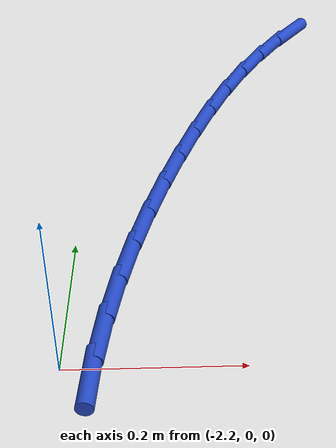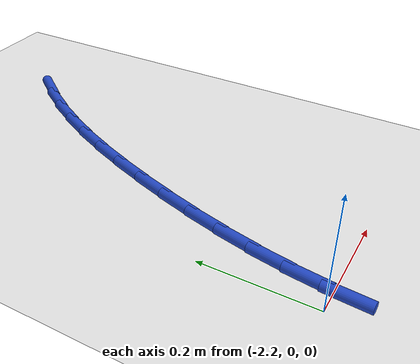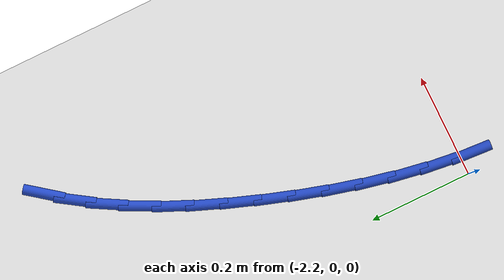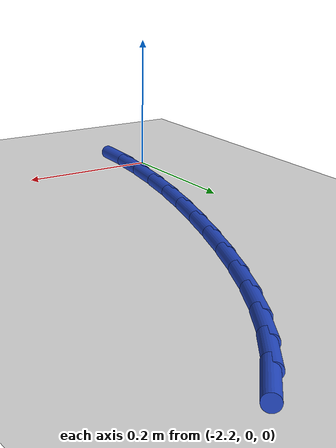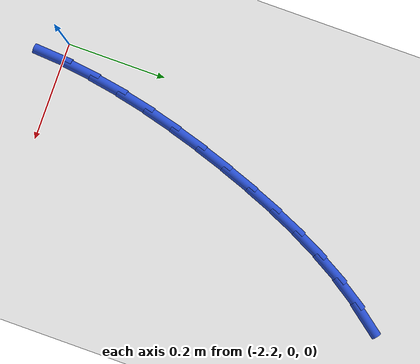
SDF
<sdf version="1.6">
 <world name="default">
  <model name="ground_plane">
   <static>1</static>
   <link name="link">
    <collision name="collision">
     <geometry><plane><normal>0 0 1</normal><size>100 100</size></plane></geometry>
     <surface><friction><ode><mu>100</mu><mu2>50</mu2></ode></friction></surface>
    </collision>
    <visual name="visual">
     <cast_shadows>0</cast_shadows>
     <geometry><plane><normal>0 0 1</normal><size>100 100</size></plane></geometry>
     <material>
      <script><uri>file://media/materials/scripts/gazebo.material</uri><name>Gazebo/WhiteGlow</name></script>
     </material>
    </visual>
   </link>
  </model>
  <model name="line">
   <link name="link_42">
    <pose>-1.8848785332239637 0.7314589720108445 0.01 0 1.57 0.9150941079206814</pose>
    <collision name="collision">
     <geometry><cylinder><radius>0.01</radius><length>0.08</length></cylinder></geometry>
    </collision>
    <visual name="visual">
     <material>
      <script><name>Gazebo/Blue</name><uri>file://media/materials/scripts/gazebo.material</uri></script>
     </material>
     <geometry><cylinder><radius>0.01</radius><length>0.08</length></cylinder></geometry>
    </visual>
   </link>
   <link name="link_43">
    <pose>-1.9211521339381583 0.6843039343595119 0.01 0 1.57 0.9918430631376198</pose>
    <collision name="collision">
     <geometry><cylinder><radius>0.01</radius><length>0.08</length></cylinder></geometry>
    </collision>
    <visual name="visual">
     <material>
      <script><name>Gazebo/Blue</name><uri>file://media/materials/scripts/gazebo.material</uri></script>
     </material>
     <geometry><cylinder><radius>0.01</radius><length>0.08</length></cylinder></geometry>
    </visual>
   </link>
   <link name="link_44">
    <pose>-1.9541948117317194 0.6337547208324228 0.01 0 1.57 1.0577587825081094</pose>
    <collision name="collision">
     <geometry><cylinder><radius>0.01</radius><length>0.08</length></cylinder></geometry>
    </collision>
    <visual name="visual">
     <material>
      <script><name>Gazebo/Blue</name><uri>file://media/materials/scripts/gazebo.material</uri></script>
     </material>
     <geometry><cylinder><radius>0.01</radius><length>0.08</length></cylinder></geometry>
    </visual>
   </link>
   <link name="link_45">
    <pose>-1.9843075738647522 0.5803020225831532 0.01 0 1.57 1.113597541239291</pose>
    <collision name="collision">
     <geometry><cylinder><radius>0.01</radius><length>0.08</length></cylinder></geometry>
    </collision>
    <visual name="visual">
     <material>
      <script><name>Gazebo/Blue</name><uri>file://media/materials/scripts/gazebo.material</uri></script>
     </material>
     <geometry><cylinder><radius>0.01</radius><length>0.08</length></cylinder></geometry>
    </visual>
   </link>
   <link name="link_46">
    <pose>-2.0117914275973603 0.5244365307652789 0.01 0 1.57 1.1602191989103736</pose>
    <collision name="collision">
     <geometry><cylinder><radius>0.01</radius><length>0.08</length></cylinder></geometry>
    </collision>
    <visual name="visual">
     <material>
      <script><name>Gazebo/Blue</name><uri>file://media/materials/scripts/gazebo.material</uri></script>
     </material>
     <geometry><cylinder><radius>0.01</radius><length>0.08</length></cylinder></geometry>
    </visual>
   </link>
   <link name="link_47">
    <pose>-2.036947380189646 0.46664893653237555 0.01 0 1.57 1.1984471859363326</pose>
    <collision name="collision">
     <geometry><cylinder><radius>0.01</radius><length>0.08</length></cylinder></geometry>
    </collision>
    <visual name="visual">
     <material>
      <script><name>Gazebo/Blue</name><uri>file://media/materials/scripts/gazebo.material</uri></script>
     </material>
     <geometry><cylinder><radius>0.01</radius><length>0.08</length></cylinder></geometry>
    </visual>
   </link>
   <link name="link_48">
    <pose>-2.060076438901716 0.40742993103801917 0.01 0 1.57 1.2290663607361696</pose>
    <collision name="collision">
     <geometry><cylinder><radius>0.01</radius><length>0.08</length></cylinder></geometry>
    </collision>
    <visual name="visual">
     <material>
      <script><name>Gazebo/Blue</name><uri>file://media/materials/scripts/gazebo.material</uri></script>
     </material>
     <geometry><cylinder><radius>0.01</radius><length>0.08</length></cylinder></geometry>
    </visual>
   </link>
   <link name="link_49">
    <pose>-2.0814752470189757 0.3472676028347945 0.01 0 1.57 1.256575206509959</pose>
    <collision name="collision">
     <geometry><cylinder><radius>0.01</radius><length>0.08</length></cylinder></geometry>
    </collision>
    <visual name="visual">
     <material>
      <script><name>Gazebo/Blue</name><uri>file://media/materials/scripts/gazebo.material</uri></script>
     </material>
     <geometry><cylinder><radius>0.01</radius><length>0.08</length></cylinder></geometry>
    </visual>
   </link>
   <link name="link_50">
    <pose>-2.1012182903738905 0.28651754951294234 0.01 0 1.57 1.2870657769034473</pose>
    <collision name="collision">
     <geometry><cylinder><radius>0.01</radius><length>0.08</length></cylinder></geometry>
    </collision>
    <visual name="visual">
     <material>
      <script><name>Gazebo/Blue</name><uri>file://media/materials/scripts/gazebo.material</uri></script>
     </material>
     <geometry><cylinder><radius>0.01</radius><length>0.08</length></cylinder></geometry>
    </visual>
   </link>
   <link name="link_51">
    <pose>-2.119056773968396 0.22534256942154776 0.01 0 1.57 1.3212807590071791</pose>
    <collision name="collision">
     <geometry><cylinder><radius>0.01</radius><length>0.08</length></cylinder></geometry>
    </collision>
    <visual name="visual">
     <material>
      <script><name>Gazebo/Blue</name><uri>file://media/materials/scripts/gazebo.material</uri></script>
     </material>
     <geometry><cylinder><radius>0.01</radius><length>0.08</length></cylinder></geometry>
    </visual>
   </link>
   <link name="link_52">
    <pose>-2.134716417691665 0.1638902620177811 0.01 0 1.57 1.3595419470632206</pose>
    <collision name="collision">
     <geometry><cylinder><radius>0.01</radius><length>0.08</length></cylinder></geometry>
    </collision>
    <visual name="visual">
     <material>
      <script><name>Gazebo/Blue</name><uri>file://media/materials/scripts/gazebo.material</uri></script>
     </material>
     <geometry><cylinder><radius>0.01</radius><length>0.08</length></cylinder></geometry>
    </visual>
   </link>
   <link name="link_53">
    <pose>-2.1479229414328698 0.10230822675881275 0.01 0 1.57 1.40219753916048</pose>
    <collision name="collision">
     <geometry><cylinder><radius>0.01</radius><length>0.08</length></cylinder></geometry>
    </collision>
    <visual name="visual">
     <material>
      <script><name>Gazebo/Blue</name><uri>file://media/materials/scripts/gazebo.material</uri></script>
     </material>
     <geometry><cylinder><radius>0.01</radius><length>0.08</length></cylinder></geometry>
    </visual>
   </link>
   <link name="link_54">
    <pose>-2.1584020650811837 0.04074406310181311 0.01 0 1.57 1.4496080543540828</pose>
    <collision name="collision">
     <geometry><cylinder><radius>0.01</radius><length>0.08</length></cylinder></geometry>
    </collision>
    <visual name="visual">
     <material>
      <script><name>Gazebo/Blue</name><uri>file://media/materials/scripts/gazebo.material</uri></script>
     </material>
     <geometry><cylinder><radius>0.01</radius><length>0.08</length></cylinder></geometry>
    </visual>
   </link>
   <link name="link_55">
    <pose>-2.1658795085257805 -0.020654629496047402 0.01 0 1.57 1.5021242500835907</pose>
    <collision name="collision">
     <geometry><cylinder><radius>0.01</radius><length>0.08</length></cylinder></geometry>
    </collision>
    <visual name="visual">
     <material>
      <script><name>Gazebo/Blue</name><uri>file://media/materials/scripts/gazebo.material</uri></script>
     </material>
     <geometry><cylinder><radius>0.01</radius><length>0.08</length></cylinder></geometry>
    </visual>
   </link>
  </model>
 </world>
</sdf>
